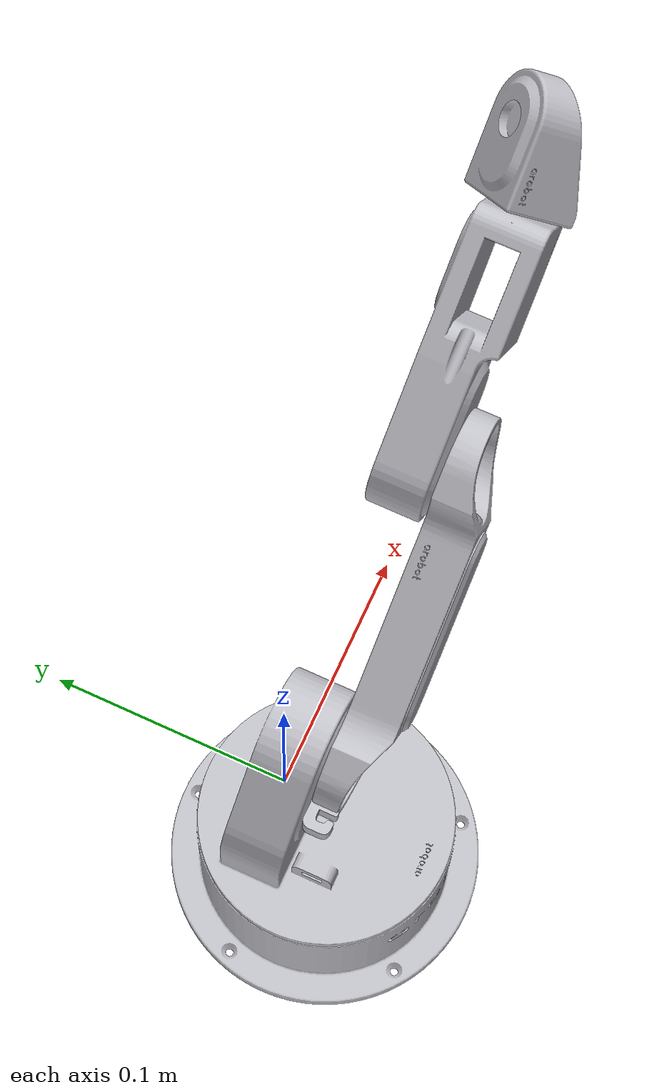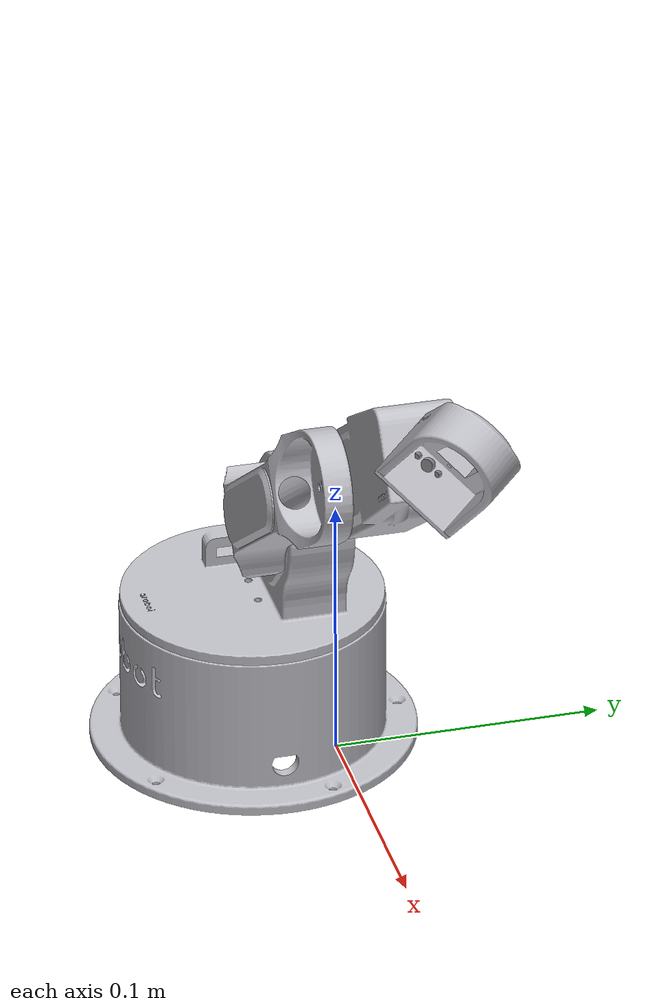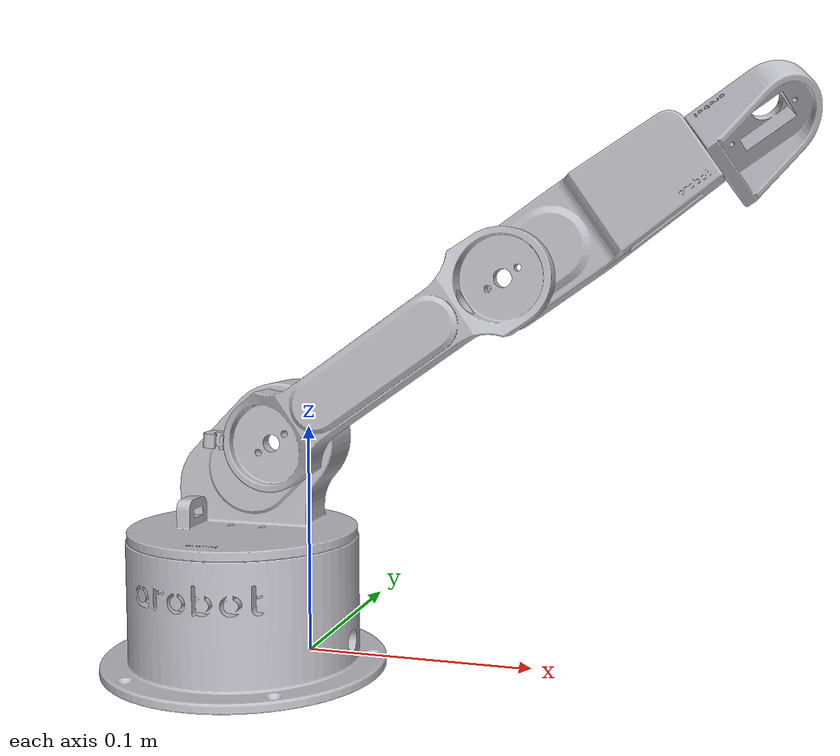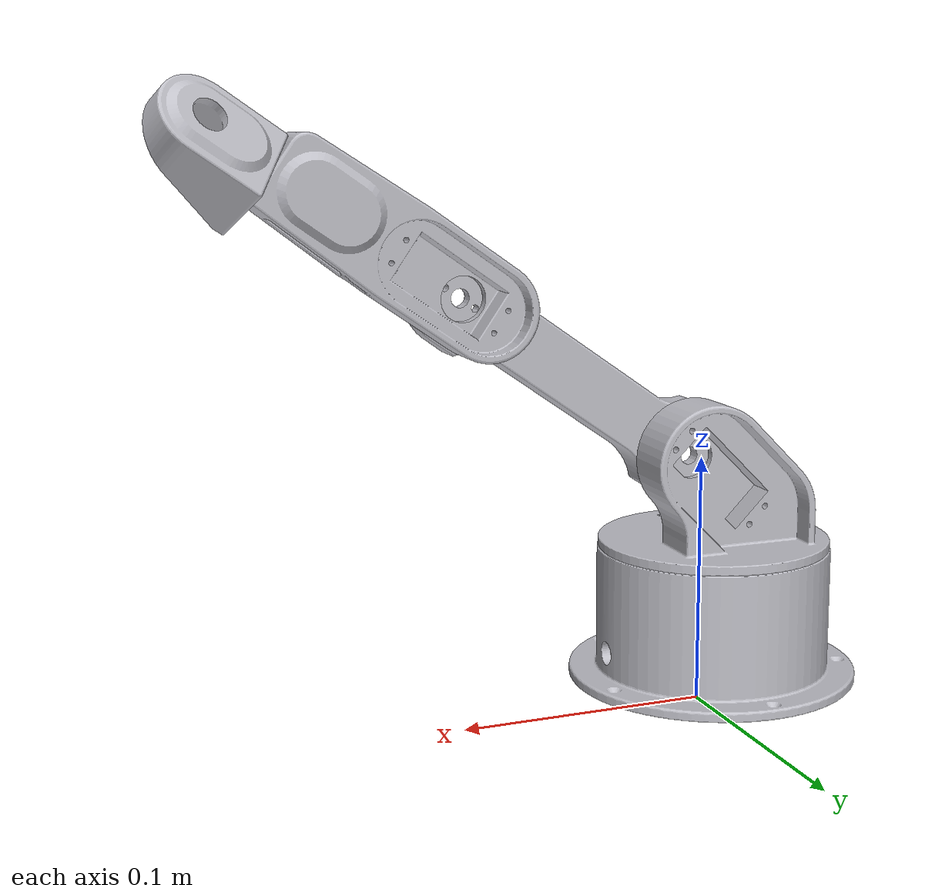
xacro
<?xml version="1.0" ?>
<robot name="robot" xmlns:xacro="http://www.ros.org/wiki/xacro">

<xacro:include filename="$(find robot_description)/urdf/materials.xacro" />
<xacro:include filename="$(find robot_description)/urdf/robot.trans" />
<xacro:include filename="$(find robot_description)/urdf/robot.gazebo" />
<link name="base_link">
  <inertial>
    <origin rpy="0 0 0" xyz="-0.019902403741442462 -0.026131815850244072 0.02238118207502583"/>
    <mass value="0.7310055412327093"/>
    <inertia ixx="0.000985" ixy="0.0" ixz="2.7e-05" iyy="0.001061" iyz="-4e-06" izz="0.001604"/>
  </inertial>
  <visual>
    <origin rpy="0 0 0" xyz="0 0 0"/>
    <geometry>
      <mesh filename="package://robot_description/meshes/base_link.stl" scale="0.001 0.001 0.001"/>
    </geometry>
    <material name="silver"/>
  </visual>
  <collision>
    <origin rpy="0 0 0" xyz="0 0 0"/>
    <geometry>
      <mesh filename="package://robot_description/meshes/base_link.stl" scale="0.001 0.001 0.001"/>
    </geometry>
  </collision>
</link>

<link name="NATHANwaist_1">
  <inertial>
    <origin rpy="0 0 0" xyz="0.0022441628498335066 0.007590344465981981 0.01877031829177992"/>
    <mass value="0.5674790951447787"/>
    <inertia ixx="0.000389" ixy="-1.2e-05" ixz="-5e-05" iyy="0.00049" iyz="-5.3e-05" izz="0.000447"/>
  </inertial>
  <visual>
    <origin rpy="0 0 0" xyz="0.019548 0.026486 -0.056"/>
    <geometry>
      <mesh filename="package://robot_description/meshes/NATHANwaist_1.stl" scale="0.001 0.001 0.001"/>
    </geometry>
    <material name="silver"/>
  </visual>
  <collision>
    <origin rpy="0 0 0" xyz="0.019548 0.026486 -0.056"/>
    <geometry>
      <mesh filename="package://robot_description/meshes/NATHANwaist_1.stl" scale="0.001 0.001 0.001"/>
    </geometry>
  </collision>
</link>

<link name="NATHANarm1_1">
  <inertial>
    <origin rpy="0 0 0" xyz="0.04849048815110292 -0.008282958375380033 0.034105993344051316"/>
    <mass value="0.4435773528478237"/>
    <inertia ixx="0.000286" ixy="1e-06" ixz="-0.00033" iyy="0.000787" iyz="0.0" izz="0.000536"/>
  </inertial>
  <visual>
    <origin rpy="0 0 0" xyz="0.005629 0.022537 -0.096277"/>
    <geometry>
      <mesh filename="package://robot_description/meshes/NATHANarm1_1.stl" scale="0.001 0.001 0.001"/>
    </geometry>
    <material name="silver"/>
  </visual>
  <collision>
    <origin rpy="0 0 0" xyz="0.005629 0.022537 -0.096277"/>
    <geometry>
      <mesh filename="package://robot_description/meshes/NATHANarm1_1.stl" scale="0.001 0.001 0.001"/>
    </geometry>
  </collision>
</link>

<link name="NATHANarm02_1">
  <inertial>
    <origin rpy="0 0 0" xyz="0.031227914013118252 0.009778981953459175 0.021821434108410226"/>
    <mass value="0.4469758277074998"/>
    <inertia ixx="0.000222" ixy="-6e-06" ixz="-0.000194" iyy="0.000527" iyz="-4e-06" izz="0.000364"/>
  </inertial>
  <visual>
    <origin rpy="0 0 0" xyz="-0.092669 0.022537 -0.165106"/>
    <geometry>
      <mesh filename="package://robot_description/meshes/NATHANarm02_1.stl" scale="0.001 0.001 0.001"/>
    </geometry>
    <material name="silver"/>
  </visual>
  <collision>
    <origin rpy="0 0 0" xyz="-0.092669 0.022537 -0.165106"/>
    <geometry>
      <mesh filename="package://robot_description/meshes/NATHANarm02_1.stl" scale="0.001 0.001 0.001"/>
    </geometry>
  </collision>
</link>

<link name="NATHANarm3_1">
  <inertial>
    <origin rpy="0 0 0" xyz="0.015052541891171806 0.007684277084908263 0.010347648118011255"/>
    <mass value="0.1425119969472937"/>
    <inertia ixx="3e-05" ixy="-5e-06" ixz="-8e-06" iyy="3.8e-05" iyz="1e-06" izz="2.9e-05"/>
  </inertial>
  <visual>
    <origin rpy="0 0 0" xyz="-0.169228 0.013037 -0.212243"/>
    <geometry>
      <mesh filename="package://robot_description/meshes/NATHANarm3_1.stl" scale="0.001 0.001 0.001"/>
    </geometry>
    <material name="silver"/>
  </visual>
  <collision>
    <origin rpy="0 0 0" xyz="-0.169228 0.013037 -0.212243"/>
    <geometry>
      <mesh filename="package://robot_description/meshes/NATHANarm3_1.stl" scale="0.001 0.001 0.001"/>
    </geometry>
  </collision>
</link>

<joint name="Rev1" type="continuous">
  <origin rpy="0 0 0" xyz="-0.019548 -0.026486 0.056"/>
  <parent link="base_link"/>
  <child link="NATHANwaist_1"/>
  <axis xyz="0.0 -0.0 1.0"/>
</joint>

<joint name="Rev2" type="revolute">
  <origin rpy="0 0 0" xyz="0.013919 0.003949 0.040277"/>
  <parent link="NATHANwaist_1"/>
  <child link="NATHANarm1_1"/>
  <axis xyz="0.0 -1.0 -0.0"/>
  <limit effort="100" lower="-0.698132" upper="2.356194" velocity="100"/>
</joint>

<joint name="Rev3" type="revolute">
  <origin rpy="0 0 0" xyz="0.098298 0.0 0.068829"/>
  <parent link="NATHANarm1_1"/>
  <child link="NATHANarm02_1"/>
  <axis xyz="-0.0 1.0 0.0"/>
  <limit effort="100" lower="-1.22173" upper="1.48353" velocity="100"/>
</joint>

<joint name="Rev4" type="continuous">
  <origin rpy="0 0 0" xyz="0.076559 0.0095 0.047137"/>
  <parent link="NATHANarm02_1"/>
  <child link="NATHANarm3_1"/>
  <axis xyz="0.819152 0.0 0.573576"/>
</joint>

</robot>

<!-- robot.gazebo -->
<robot name="robot" xmlns:xacro="http://www.ros.org/wiki/xacro" >

<xacro:property name="body_color" value="Gazebo/Silver" />

<gazebo>
  <plugin filename="libgazebo_ros_control.so" name="control"/>
</gazebo>
<gazebo reference="base_link">
  <material>${body_color}</material>
  <mu1>0.2</mu1>
  <mu2>0.2</mu2>
  <selfCollide>true</selfCollide>
  <gravity>true</gravity>
</gazebo>

<gazebo reference="NATHANwaist_1">
  <material>${body_color}</material>
  <mu1>0.2</mu1>
  <mu2>0.2</mu2>
  <selfCollide>true</selfCollide>
</gazebo>

<gazebo reference="NATHANarm1_1">
  <material>${body_color}</material>
  <mu1>0.2</mu1>
  <mu2>0.2</mu2>
  <selfCollide>true</selfCollide>
</gazebo>

<gazebo reference="NATHANarm02_1">
  <material>${body_color}</material>
  <mu1>0.2</mu1>
  <mu2>0.2</mu2>
  <selfCollide>true</selfCollide>
</gazebo>

<gazebo reference="NATHANarm3_1">
  <material>${body_color}</material>
  <mu1>0.2</mu1>
  <mu2>0.2</mu2>
  <selfCollide>true</selfCollide>
</gazebo>

</robot>
